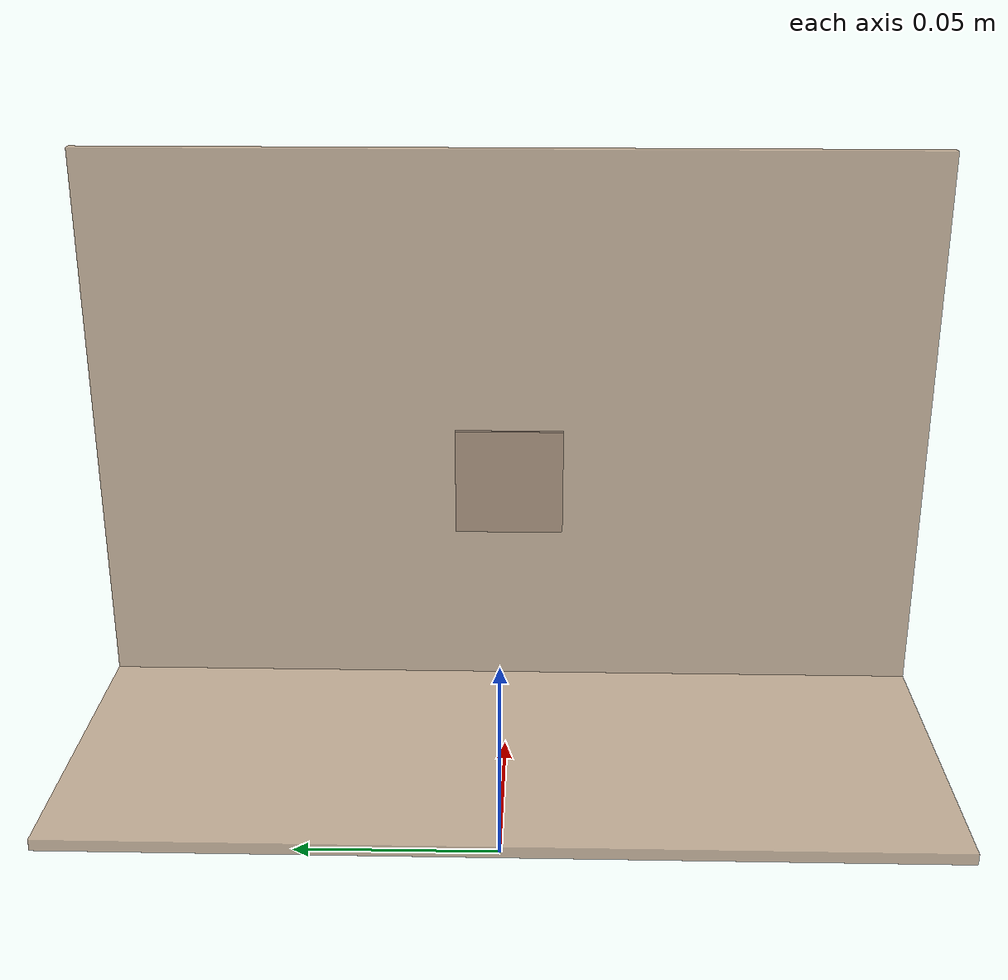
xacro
<?xml version="1.0" encoding="UTF-8" ?>
<robot name="prsg2_robot" xmlns:xacro="http://www.ros.org/wiki/xacro">

  <xacro:property name="degree" value="${pi / 180}" />
  <xacro:property name="inch" value="0.0254" />

  <xacro:property name="goal_width" value="${9 * inch}" />
  <xacro:property name="goal_height" value="${6 * inch}" />
  <xacro:property name="goal_depth" value="${3.5 * inch}" />
  <xacro:property name="goal_thickness" value="0.003" />

  <xacro:property name="block_side" value="0.075" />
  <xacro:property name="fiducial_size" value="0.030" />
  <xacro:property name="fiducial_thickness" value="0.001" />
  <xacro:property name="fiducial_height"
                  value="${block_side - fiducial_size/2}" />

  <xacro:macro name="material_color" params="r g b a:=1.0">
    <material name="color_${r}_${g}_${b}_{$a}">
      <color rgba="${r} ${g} ${b} ${a}" />
    </material>
  </xacro:macro>

  <!-- The goal floor -->
  <link name="goal_floor">
    <visual>
      <origin xyz="${goal_depth / 2} 0 0" rpy="0 0 0" />
      <geometry>
        <box size="${goal_depth} ${goal_width} ${goal_thickness}" />
      </geometry>
      <xacro:material_color r="0.75" g="0.61" b="0.48" a="0.7" />
    </visual>
  </link>

  <!-- The goal back -->
  <link name="goal_back">
    <visual>
      <origin xyz="0 0 ${goal_height / 2}" rpy="0 0 0" />
      <geometry>
        <box size="${goal_thickness} ${goal_width} ${goal_height}" />
      </geometry>
      <xacro:material_color r="0.75" g="0.61" b="0.48" a="0.7" />
    </visual>
  </link>
  <joint name="goal_floor_to_goal_back" type="fixed">
    <parent link="goal_floor" />
    <child link="goal_back" />
    <origin xyz="${goal_depth} 0 0" />
  </joint>

  <!-- The goal fiducial -->
  <link name="mock_goal">
    <visual>
      <origin xyz="${-fiducial_thickness} 0 0" rpy="0 0 0" />
      <geometry>
        <box size="${fiducial_thickness} ${fiducial_size} ${fiducial_size}" />
      </geometry>
      <xacro:material_color r="1.0" g="1.0" b="1.0" a="1.0" />
    </visual>
  </link>
  <joint name="goal_back_to_goal" type="fixed">
    <parent link="goal_back" />
    <child link="mock_goal" />
    <origin xyz="0 0 ${fiducial_height}" rpy="0 0 ${pi}" />
  </joint>

</robot>
